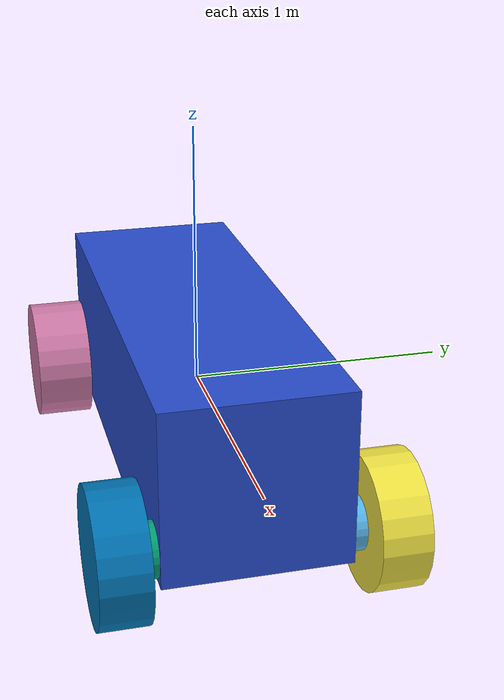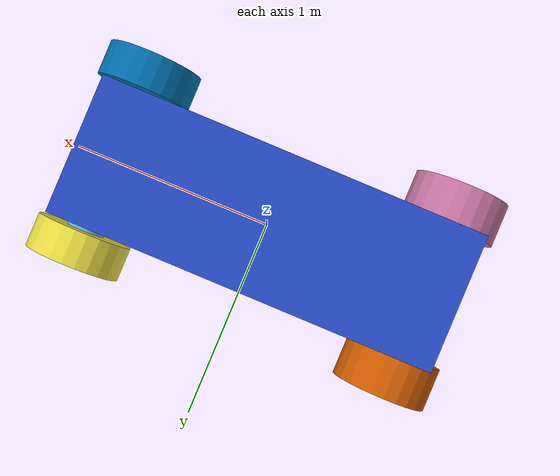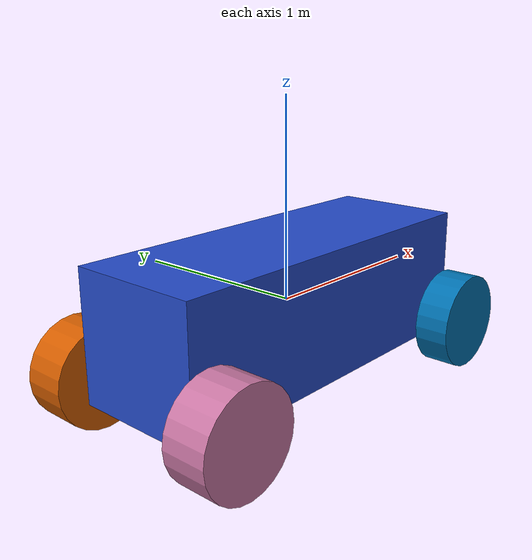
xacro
<?xml version="1.0"?>

<robot xmlns:xacro="http://www.ros.org/wiki/xacro" name="ursa_bot">
    <xacro:include filename="materials.xacro"/>

    <!-- Degree-to-radian conversions -->
    <xacro:property name="degrees_45" value="0.785398163"/>
    <xacro:property name="degrees_90" value="1.57079633"/>
    <xacro:property name="degrees_180" value="3.14159265"/>

    <!-- Inertia Generator -->
    <xacro:macro name="default_inertial" params="mass">
        <inertial>
            <mass value="${mass}" />
            <inertia ixx="1.5" ixy="0.0" ixz="0.0" iyy="1.5" iyz="0.0" izz="1.5" />
        </inertial>
    </xacro:macro>

    <!-- Basic Geometry of Body -->
    <xacro:property name="body_length" value="1.91" />
    <xacro:property name="body_width" value="0.680618" />
    <xacro:property name="body_height" value="0.65" />
    <xacro:property name="body_mass" value="5.3"/>

    <!-- Front Wheel Properties -->
    <xacro:property name="front_wheel_width" value=".18" />
    <xacro:property name="front_wheel_diameter" value="0.5" />
    <xacro:property name="front_wheel_mass" value="2"/>

    <!-- Steering Link Properties -->
    <xacro:property name="steering_width" value="${front_wheel_width/4}" />
    <xacro:property name="steering_diameter" value="${front_wheel_diameter/5}" />
    <xacro:property name="steering_mass" value="2"/>

    <!-- Rear Wheel Properties -->
    <xacro:property name="rear_wheel_width" value="${front_wheel_width+steering_width}" />
    <xacro:property name="rear_wheel_diameter" value="0.5" />
    <xacro:property name="rear_wheel_mass" value="2"/>

    <!-- Base Link -->
    <link name="base_link">
        <visual>
            <geometry>
                <box size="${body_length} ${body_width} ${body_height}"/>
            </geometry>
            <material name="blue" />
        </visual>
        <collision>
            <geometry>
                <box size="${body_length} ${body_width} ${body_height}"/>
            </geometry>
        </collision>
        <xacro:default_inertial mass="${body_mass}"/>
    </link>

    <!-- Steering Macro -->
    <xacro:macro name="steering_link" params="prefix reflect">

        <link name="${prefix}_steering_link">
            <visual>
                <origin xyz="0.0 0.0 0.0" rpy="${degrees_90} 0.0 0.0"/>
                <geometry>
                    <cylinder radius="${steering_diameter}" length="${steering_width}"/>
                </geometry>
            </visual>
            <collision>
                <origin xyz="0.0 0.0 0.0" rpy="${degrees_90} 0.0 0.0"/>
                <geometry>
                    <cylinder radius="${steering_diameter}" length="${steering_width}"/>
                </geometry>
            </collision>
            <xacro:default_inertial mass="${steering_mass}"/>
        </link>

        <joint name="${prefix}_steering_joint" type="revolute">
            <parent link="base_link"/>
            <child link="${prefix}_steering_link"/>
            <axis xyz="0.0 0.0 0.1"/>
            <origin xyz="${(body_length / 2)- 0.1} ${(body_width / 2 + steering_width / 2) * reflect} ${-(body_height/2) + 0.1}" rpy="0.0 0.0 0.0"/>
            <limit lower="-0.30" upper="0.30" effort="100.00" velocity="100.00"/>
        </joint>

        <!-- The Transmission -->
        <transmission name="${prefix}_steering_link_trans">
            <type>transmission_interface/SimpleTransmission</type>
            <joint name="${prefix}_steering_joint">
                <hardwareInterface>hardware_interface/PositionJointInterface</hardwareInterface>
            </joint>
            <actuator name="${prefix}_steering_link_motor">
                <hardwareInterface>hardware_interface/PositionJointInterface</hardwareInterface>
                <mechanicalReduction>1</mechanicalReduction>
            </actuator>
        </transmission>

    </xacro:macro>

    <!-- Front Wheel Macro -->
    <xacro:macro name="front_wheel_link" params="prefix reflect">

        <link name="${prefix}_front_wheel">
            <visual>
                <origin xyz="0.0 0.0 0.0" rpy="${degrees_90} 0.0 0.0"/>
                <geometry>
                    <cylinder radius="${front_wheel_diameter/2}" length="${front_wheel_width}"/>
                </geometry>
            </visual>
            <collision>
                <origin xyz="0.0 0.0 0.0" rpy="${degrees_90} 0.0 0.0"/>
                <geometry>
                    <cylinder radius="${front_wheel_diameter/2}" length="${front_wheel_width}"/>
                </geometry>
            </collision>
            <xacro:default_inertial mass="${front_wheel_mass}"/>
        </link>

        <joint name="${prefix}_front_axle" type="continuous">
            <parent link="${prefix}_steering_link"/>
            <child link="${prefix}_front_wheel"/>
            <axis xyz="0.0 0.1 0.0"/>
            <origin xyz="0 ${(front_wheel_width/2 + steering_width/2) * reflect} 0"/>
        </joint>

        <!-- The Transmission -->
        <transmission name="${prefix}_front_wheel_trans">
            <type>transmission_interface/SimpleTransmission</type>
            <joint name="${prefix}_front_axle">
                <hardwareInterface>hardware_interface/VelocityJointInterface</hardwareInterface>
            </joint>
            <actuator name="${prefix}_front_wheel_motor">
                <hardwareInterface>hardware_interface/VelocityJointInterface</hardwareInterface>
                <mechanicalReduction>1</mechanicalReduction>
            </actuator>
        </transmission>

    </xacro:macro>

    <!-- Rear Wheel Macro -->
    <xacro:macro name="rear_wheel_link" params="prefix reflect">

        <link name="${prefix}_rear_wheel">
            <visual>
                <origin xyz="0.0 0.0 0.0" rpy="${degrees_90} 0.0 0.0"/>
                <geometry>
                    <cylinder radius="${rear_wheel_diameter/2}" length="${rear_wheel_width}"/>
                </geometry>
            </visual>
            <collision>
                <origin xyz="0.0 0.0 0.0" rpy="${degrees_90} 0.0 0.0"/>
                <geometry>
                    <cylinder radius="${rear_wheel_diameter/2}" length="${rear_wheel_width}"/>
                </geometry>
            </collision>
            <xacro:default_inertial mass="${rear_wheel_mass}"/>
        </link>

        <joint name="${prefix}_rear_axle" type="continuous">
            <parent link="base_link"/>
            <child link="${prefix}_rear_wheel"/>
            <axis xyz="0.0 0.1 0.0"/>
            <origin xyz="${-(body_length/2) + 0.1} ${(rear_wheel_width/2 + body_width/2) * reflect} ${-(body_height/2) + 0.1}"/>
        </joint>

        <!-- The Transmission -->
        <transmission name="${prefix}_rear_wheel_trans">
            <type>transmission_interface/SimpleTransmission</type>
            <joint name="${prefix}_rear_axle">
                <hardwareInterface>hardware_interface/VelocityJointInterface</hardwareInterface>
            </joint>
            <actuator name="${prefix}_rear_wheel_motor">
                <hardwareInterface>hardware_interface/VelocityJointInterface</hardwareInterface>
                <mechanicalReduction>1</mechanicalReduction>
            </actuator>
        </transmission>

    </xacro:macro>

    <xacro:steering_link prefix="left" reflect="1" />
    <xacro:steering_link prefix="right" reflect="-1" />

    <xacro:front_wheel_link prefix="left" reflect="1" />
    <xacro:front_wheel_link prefix="right" reflect="-1" />

    <xacro:rear_wheel_link prefix="left" reflect="1" />
    <xacro:rear_wheel_link prefix="right" reflect="-1" />

    <link name="front_steer">
        <visual>
            <origin xyz="0.0 0.0 0.0" rpy="0.0 0.0 0.0"/>
            <geometry>
                <cylinder radius="${front_wheel_diameter/2}" length="${front_wheel_width/2}"/>
            </geometry>
        </visual>
        <collision>
            <origin xyz="0.0 0.0 0.0" rpy="0.0 0.0 0.0"/>
            <geometry>
                <cylinder radius="${front_wheel_diameter/2}" length="${front_wheel_width/2}"/>
            </geometry>
        </collision>
        <xacro:default_inertial mass="${front_wheel_mass}"/>
    </link>
    <link name="rear_wheel">
        <visual>
            <origin xyz="0.0 0.0 0.0" rpy="${degrees_90} 0.0 0.0"/>
            <geometry>
                <cylinder radius="${front_wheel_diameter/2}" length="${front_wheel_width/2}"/>
            </geometry>
        </visual>
        <collision>
            <origin xyz="0.0 0.0 0.0" rpy="${degrees_90} 0.0 0.0"/>
            <geometry>
                <cylinder radius="${front_wheel_diameter/2}" length="${front_wheel_width/2}"/>
            </geometry>
        </collision>
        <xacro:default_inertial mass="${front_wheel_mass}"/>
    </link>

    <joint name="front_steer_joint" type="revolute">
        <parent link="base_link"/>
        <child link="front_steer"/>
        <axis xyz="0.0 0.0 0.1"/>
        <origin xyz="0.7 0.0 0.0" rpy="0.0 0.0 0.0"/>
        <limit lower="-0.50" upper="0.50" effort="1000" velocity="3"/>
    </joint>

    <joint name="rear_wheel_joint" type="continuous">
        <parent link="base_link"/>
        <child link="rear_wheel"/>

        <axis xyz="0.0 1.0 0.0"/>
        <origin xyz="-0.70 0.0 0.0" rpy="0.0 0.0 0.0"/>
        <limit effort="1000.0" velocity="3.0"/>
    </joint>

    <transmission name="front_steer_joint_trans">
        <type>transmission_interface/SimpleTransmission</type>
        <joint name="front_steer_joint">
            <hardwareInterface>hardware_interface/PositionJointInterface</hardwareInterface>
        </joint>
        <actuator name="front_steer_joint_motor">
            <hardwareInterface>hardware_interface/PositionJointInterface</hardwareInterface>
            <mechanicalReduction>1</mechanicalReduction>
        </actuator>
    </transmission>

    <transmission name="rear_wheel_joint_trans">
        <type>transmission_interface/SimpleTransmission</type>
        <joint name="rear_wheel_joint">
            <hardwareInterface>hardware_interface/VelocityJointInterface</hardwareInterface>
        </joint>
        <actuator name="rear_wheel_joint_motor">
            <hardwareInterface>hardware_interface/VelocityJointInterface</hardwareInterface>
            <mechanicalReduction>1</mechanicalReduction>
        </actuator>
    </transmission>

    <!-- Gazebo plugin for ROS Control -->
    <gazebo>
       <plugin name="gazebo_ros_ackermann_drive" filename="libgazebo_ros_ackermann_drive.so">

  <ros>
    <namespace>/</namespace>
    <remapping>cmd_vel:=cmd_vel</remapping>
    <remapping>odom:=odom</remapping>
    <remapping>distance:=distance</remapping>
  </ros>

  <update_rate>100.0</update_rate>

  <!-- wheels -->
  <front_left_joint>left_front_axle</front_left_joint>
  <front_right_joint>right_front_axle</front_right_joint>
  <rear_left_joint>left_rear_axle</rear_left_joint>
  <rear_right_joint>right_rear_axle</rear_right_joint>
  <left_steering_joint>left_steering_joint</left_steering_joint>
  <right_steering_joint>right_steering_joint</right_steering_joint>
  <steering_wheel_joint>front_steer_joint</steering_wheel_joint>

  <!-- Max absolute steer angle for tyre in radians-->
  <!-- Any cmd_vel angular z greater than this would be capped -->
  <max_steer>0.6458</max_steer>

  <!-- Max absolute steering angle of steering wheel -->
  <max_steering_angle>7.85</max_steering_angle>

  <!-- Max absolute linear speed in m/s -->
  <max_speed>20</max_speed>

  <!-- PID tuning -->
  <left_steering_pid_gain>1500 0 1</left_steering_pid_gain>
  <left_steering_i_range>0 0</left_steering_i_range>
  <right_steering_pid_gain>1500 0 1</right_steering_pid_gain>
  <right_steering_i_range>0 0</right_steering_i_range>
  <linear_velocity_pid_gain>1000 0 1</linear_velocity_pid_gain>
  <linear_velocity_i_range>0 0</linear_velocity_i_range>

  <!-- output -->
  <publish_odom>true</publish_odom>
  <publish_odom_tf>true</publish_odom_tf>
  <publish_wheel_tf>true</publish_wheel_tf>
  <publish_distance>true</publish_distance>

  <odometry_frame>odom</odometry_frame>
  <robot_base_frame>base_link</robot_base_frame>

</plugin>
    </gazebo>
</robot>
